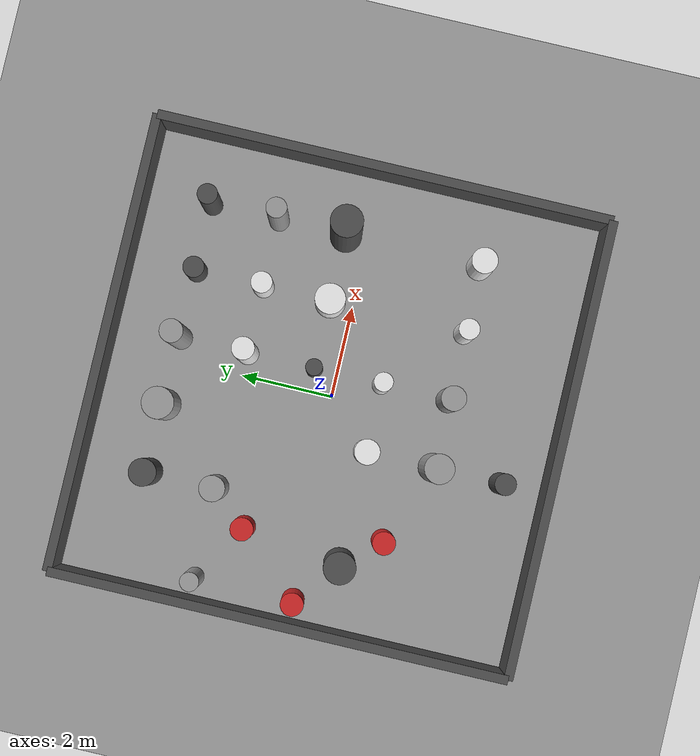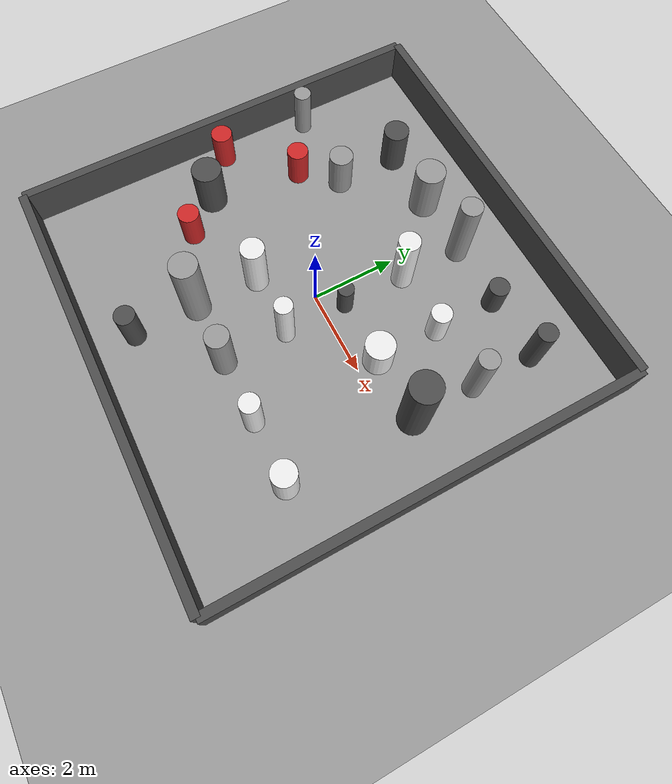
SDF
<?xml version="1.0"?>
<sdf version="1.6">
  <!-- style: pillar_forest | mu1=0.660 mu2=0.362 -->
  <world name="randomized_training_world">

    <physics type="ode">
      <max_step_size>0.01</max_step_size>
      <real_time_factor>1</real_time_factor>
      <real_time_update_rate>100</real_time_update_rate>
    </physics>

    <include><uri>model://sun</uri></include>

    <model name="custom_ground">
      <static>true</static>
      <link name="link">
        <collision name="collision">
          <geometry><plane><normal>0 0 1</normal><size>20 20</size></plane></geometry>
          <surface><friction><ode><mu>0.66</mu><mu2>0.362</mu2></ode></friction></surface>
        </collision>
        <visual name="visual">
          <geometry><plane><normal>0 0 1</normal><size>20 20</size></plane></geometry>
          <material><script><uri>file://media/materials/scripts/gazebo.material</uri><name>Gazebo/Grey</name></script></material>
        </visual>
      </link>
    </model>

    <model name="boundary_north"><static>true</static><pose>0 5 0.5 0 0 0</pose><link name="link"><collision name="c"><geometry><box><size>10 0.2 1.0</size></box></geometry></collision><visual name="v"><geometry><box><size>10 0.2 1.0</size></box></geometry><material><script><uri>file://media/materials/scripts/gazebo.material</uri><name>Gazebo/DarkGrey</name></script></material></visual></link></model>

    <model name="boundary_south"><static>true</static><pose>0 -5 0.5 0 0 0</pose><link name="link"><collision name="c"><geometry><box><size>10 0.2 1.0</size></box></geometry></collision><visual name="v"><geometry><box><size>10 0.2 1.0</size></box></geometry><material><script><uri>file://media/materials/scripts/gazebo.material</uri><name>Gazebo/DarkGrey</name></script></material></visual></link></model>

    <model name="boundary_east"><static>true</static><pose>5 0 0.5 0 0 0</pose><link name="link"><collision name="c"><geometry><box><size>0.2 10 1.0</size></box></geometry></collision><visual name="v"><geometry><box><size>0.2 10 1.0</size></box></geometry><material><script><uri>file://media/materials/scripts/gazebo.material</uri><name>Gazebo/DarkGrey</name></script></material></visual></link></model>

    <model name="boundary_west"><static>true</static><pose>-5 0 0.5 0 0 0</pose><link name="link"><collision name="c"><geometry><box><size>0.2 10 1.0</size></box></geometry></collision><visual name="v"><geometry><box><size>0.2 10 1.0</size></box></geometry><material><script><uri>file://media/materials/scripts/gazebo.material</uri><name>Gazebo/DarkGrey</name></script></material></visual></link></model>

    <model name="pillar_0"><static>true</static><pose>-1.0 -4.0 0.5858036382755083 0 0 0</pose><link name="link"><collision name="c"><geometry><cylinder><radius>0.2334094090253095</radius><length>1.1716072765510166</length></cylinder></geometry></collision><visual name="v"><geometry><cylinder><radius>0.2334094090253095</radius><length>1.1716072765510166</length></cylinder></geometry><material><script><uri>file://media/materials/scripts/gazebo.material</uri><name>Gazebo/DarkGrey</name></script></material></visual></link></model>

    <model name="pillar_1"><static>true</static><pose>-1.0 -2.5 1.0557196417620216 0 0 0</pose><link name="link"><collision name="c"><geometry><cylinder><radius>0.3156426558541446</radius><length>2.111439283524043</length></cylinder></geometry></collision><visual name="v"><geometry><cylinder><radius>0.3156426558541446</radius><length>2.111439283524043</length></cylinder></geometry><material><script><uri>file://media/materials/scripts/gazebo.material</uri><name>Gazebo/Grey</name></script></material></visual></link></model>

    <model name="pillar_2"><static>true</static><pose>0.5 -2.5 0.7820684715081281 0 0 0</pose><link name="link"><collision name="c"><geometry><cylinder><radius>0.2686240386446622</radius><length>1.5641369430162562</length></cylinder></geometry></collision><visual name="v"><geometry><cylinder><radius>0.2686240386446622</radius><length>1.5641369430162562</length></cylinder></geometry><material><script><uri>file://media/materials/scripts/gazebo.material</uri><name>Gazebo/Grey</name></script></material></visual></link></model>

    <model name="pillar_3"><static>true</static><pose>2.0 -2.5 0.6999343113931639 0 0 0</pose><link name="link"><collision name="c"><geometry><cylinder><radius>0.2242623442083551</radius><length>1.3998686227863277</length></cylinder></geometry></collision><visual name="v"><geometry><cylinder><radius>0.2242623442083551</radius><length>1.3998686227863277</length></cylinder></geometry><material><script><uri>file://media/materials/scripts/gazebo.material</uri><name>Gazebo/White</name></script></material></visual></link></model>

    <model name="pillar_4"><static>true</static><pose>3.5 -2.5 0.6350476915261263 0 0 0</pose><link name="link"><collision name="c"><geometry><cylinder><radius>0.2802589570443689</radius><length>1.2700953830522526</length></cylinder></geometry></collision><visual name="v"><geometry><cylinder><radius>0.2802589570443689</radius><length>1.2700953830522526</length></cylinder></geometry><material><script><uri>file://media/materials/scripts/gazebo.material</uri><name>Gazebo/White</name></script></material></visual></link></model>

    <model name="pillar_5"><static>true</static><pose>-3.5 -1.0 0.6493471854924396 0 0 0</pose><link name="link"><collision name="c"><geometry><cylinder><radius>0.3481441542415089</radius><length>1.2986943709848793</length></cylinder></geometry></collision><visual name="v"><geometry><cylinder><radius>0.3481441542415089</radius><length>1.2986943709848793</length></cylinder></geometry><material><script><uri>file://media/materials/scripts/gazebo.material</uri><name>Gazebo/DarkGrey</name></script></material></visual></link></model>

    <model name="pillar_6"><static>true</static><pose>-1.0 -1.0 0.7819548980888402 0 0 0</pose><link name="link"><collision name="c"><geometry><cylinder><radius>0.27239250595745274</radius><length>1.5639097961776804</length></cylinder></geometry></collision><visual name="v"><geometry><cylinder><radius>0.27239250595745274</radius><length>1.5639097961776804</length></cylinder></geometry><material><script><uri>file://media/materials/scripts/gazebo.material</uri><name>Gazebo/White</name></script></material></visual></link></model>

    <model name="pillar_7"><static>true</static><pose>0.5 -1.0 0.7712062651851423 0 0 0</pose><link name="link"><collision name="c"><geometry><cylinder><radius>0.20622616162789928</radius><length>1.5424125303702847</length></cylinder></geometry></collision><visual name="v"><geometry><cylinder><radius>0.20622616162789928</radius><length>1.5424125303702847</length></cylinder></geometry><material><script><uri>file://media/materials/scripts/gazebo.material</uri><name>Gazebo/White</name></script></material></visual></link></model>

    <model name="pillar_8"><static>true</static><pose>0.5 0.5 0.442707599971634 0 0 0</pose><link name="link"><collision name="c"><geometry><cylinder><radius>0.18477342563322333</radius><length>0.885415199943268</length></cylinder></geometry></collision><visual name="v"><geometry><cylinder><radius>0.18477342563322333</radius><length>0.885415199943268</length></cylinder></geometry><material><script><uri>file://media/materials/scripts/gazebo.material</uri><name>Gazebo/DarkGrey</name></script></material></visual></link></model>

    <model name="pillar_9"><static>true</static><pose>2.0 0.5 0.46480554840450106 0 0 0</pose><link name="link"><collision name="c"><geometry><cylinder><radius>0.3350169447508352</radius><length>0.9296110968090021</length></cylinder></geometry></collision><visual name="v"><geometry><cylinder><radius>0.3350169447508352</radius><length>0.9296110968090021</length></cylinder></geometry><material><script><uri>file://media/materials/scripts/gazebo.material</uri><name>Gazebo/White</name></script></material></visual></link></model>

    <model name="pillar_10"><static>true</static><pose>3.5 0.5 1.1026529946055144 0 0 0</pose><link name="link"><collision name="c"><geometry><cylinder><radius>0.3472631080031108</radius><length>2.2053059892110287</length></cylinder></geometry></collision><visual name="v"><geometry><cylinder><radius>0.3472631080031108</radius><length>2.2053059892110287</length></cylinder></geometry><material><script><uri>file://media/materials/scripts/gazebo.material</uri><name>Gazebo/DarkGrey</name></script></material></visual></link></model>

    <model name="pillar_11"><static>true</static><pose>-4.5 2.0 0.6310857947965502 0 0 0</pose><link name="link"><collision name="c"><geometry><cylinder><radius>0.205090985855528</radius><length>1.2621715895931005</length></cylinder></geometry></collision><visual name="v"><geometry><cylinder><radius>0.205090985855528</radius><length>1.2621715895931005</length></cylinder></geometry><material><script><uri>file://media/materials/scripts/gazebo.material</uri><name>Gazebo/Grey</name></script></material></visual></link></model>

    <model name="pillar_12"><static>true</static><pose>-2.5 2.0 0.5752693606117083 0 0 0</pose><link name="link"><collision name="c"><geometry><cylinder><radius>0.28073797911626086</radius><length>1.1505387212234166</length></cylinder></geometry></collision><visual name="v"><geometry><cylinder><radius>0.28073797911626086</radius><length>1.1505387212234166</length></cylinder></geometry><material><script><uri>file://media/materials/scripts/gazebo.material</uri><name>Gazebo/Grey</name></script></material></visual></link></model>

    <model name="pillar_13"><static>true</static><pose>0.5 2.0 0.8800746875823863 0 0 0</pose><link name="link"><collision name="c"><geometry><cylinder><radius>0.24557453868097912</radius><length>1.7601493751647725</length></cylinder></geometry></collision><visual name="v"><geometry><cylinder><radius>0.24557453868097912</radius><length>1.7601493751647725</length></cylinder></geometry><material><script><uri>file://media/materials/scripts/gazebo.material</uri><name>Gazebo/White</name></script></material></visual></link></model>

    <model name="pillar_14"><static>true</static><pose>2.0 2.0 0.5066184916229544 0 0 0</pose><link name="link"><collision name="c"><geometry><cylinder><radius>0.2338573210146613</radius><length>1.0132369832459087</length></cylinder></geometry></collision><visual name="v"><geometry><cylinder><radius>0.2338573210146613</radius><length>1.0132369832459087</length></cylinder></geometry><material><script><uri>file://media/materials/scripts/gazebo.material</uri><name>Gazebo/White</name></script></material></visual></link></model>

    <model name="pillar_15"><static>true</static><pose>3.5 2.0 0.901056465294665 0 0 0</pose><link name="link"><collision name="c"><geometry><cylinder><radius>0.22298925180440307</radius><length>1.80211293058933</length></cylinder></geometry></collision><visual name="v"><geometry><cylinder><radius>0.22298925180440307</radius><length>1.80211293058933</length></cylinder></geometry><material><script><uri>file://media/materials/scripts/gazebo.material</uri><name>Gazebo/Grey</name></script></material></visual></link></model>

    <model name="pillar_16"><static>true</static><pose>-2.5 3.5 0.5971509939524037 0 0 0</pose><link name="link"><collision name="c"><geometry><cylinder><radius>0.29759322655775317</radius><length>1.1943019879048073</length></cylinder></geometry></collision><visual name="v"><geometry><cylinder><radius>0.29759322655775317</radius><length>1.1943019879048073</length></cylinder></geometry><material><script><uri>file://media/materials/scripts/gazebo.material</uri><name>Gazebo/DarkGrey</name></script></material></visual></link></model>

    <model name="pillar_17"><static>true</static><pose>-1.0 3.5 0.7104772350777575 0 0 0</pose><link name="link"><collision name="c"><geometry><cylinder><radius>0.3459964044737246</radius><length>1.420954470155515</length></cylinder></geometry></collision><visual name="v"><geometry><cylinder><radius>0.3459964044737246</radius><length>1.420954470155515</length></cylinder></geometry><material><script><uri>file://media/materials/scripts/gazebo.material</uri><name>Gazebo/Grey</name></script></material></visual></link></model>

    <model name="pillar_18"><static>true</static><pose>0.5 3.5 1.01076818250141 0 0 0</pose><link name="link"><collision name="c"><geometry><cylinder><radius>0.2504107686743575</radius><length>2.02153636500282</length></cylinder></geometry></collision><visual name="v"><geometry><cylinder><radius>0.2504107686743575</radius><length>2.02153636500282</length></cylinder></geometry><material><script><uri>file://media/materials/scripts/gazebo.material</uri><name>Gazebo/Grey</name></script></material></visual></link></model>

    <model name="pillar_19"><static>true</static><pose>2.0 3.5 0.4354745624028589 0 0 0</pose><link name="link"><collision name="c"><geometry><cylinder><radius>0.23155211611238974</radius><length>0.8709491248057178</length></cylinder></geometry></collision><visual name="v"><geometry><cylinder><radius>0.23155211611238974</radius><length>0.8709491248057178</length></cylinder></geometry><material><script><uri>file://media/materials/scripts/gazebo.material</uri><name>Gazebo/DarkGrey</name></script></material></visual></link></model>

    <model name="pillar_20"><static>true</static><pose>3.5 3.5 0.7420865894566522 0 0 0</pose><link name="link"><collision name="c"><geometry><cylinder><radius>0.2188664037708287</radius><length>1.4841731789133044</length></cylinder></geometry></collision><visual name="v"><geometry><cylinder><radius>0.2188664037708287</radius><length>1.4841731789133044</length></cylinder></geometry><material><script><uri>file://media/materials/scripts/gazebo.material</uri><name>Gazebo/DarkGrey</name></script></material></visual></link></model>

    <model name="wp_marker_1"><static>true</static><pose>-2.8 -1.8 0.5 0 0 0</pose><link name="link"><collision name="c"><geometry><cylinder><radius>0.25</radius><length>1.0</length></cylinder></geometry></collision><visual name="v"><geometry><cylinder><radius>0.25</radius><length>1.0</length></cylinder></geometry><material><script><uri>file://media/materials/scripts/gazebo.material</uri><name>Gazebo/Red</name></script></material></visual></link></model>

    <model name="wp_marker_2"><static>true</static><pose>-4.5 -0.2 0.5 0 0 0</pose><link name="link"><collision name="c"><geometry><cylinder><radius>0.25</radius><length>1.0</length></cylinder></geometry></collision><visual name="v"><geometry><cylinder><radius>0.25</radius><length>1.0</length></cylinder></geometry><material><script><uri>file://media/materials/scripts/gazebo.material</uri><name>Gazebo/Red</name></script></material></visual></link></model>

    <model name="wp_marker_3"><static>true</static><pose>-3.2 1.2 0.5 0 0 0</pose><link name="link"><collision name="c"><geometry><cylinder><radius>0.25</radius><length>1.0</length></cylinder></geometry></collision><visual name="v"><geometry><cylinder><radius>0.25</radius><length>1.0</length></cylinder></geometry><material><script><uri>file://media/materials/scripts/gazebo.material</uri><name>Gazebo/Red</name></script></material></visual></link></model>

  </world>
</sdf>
